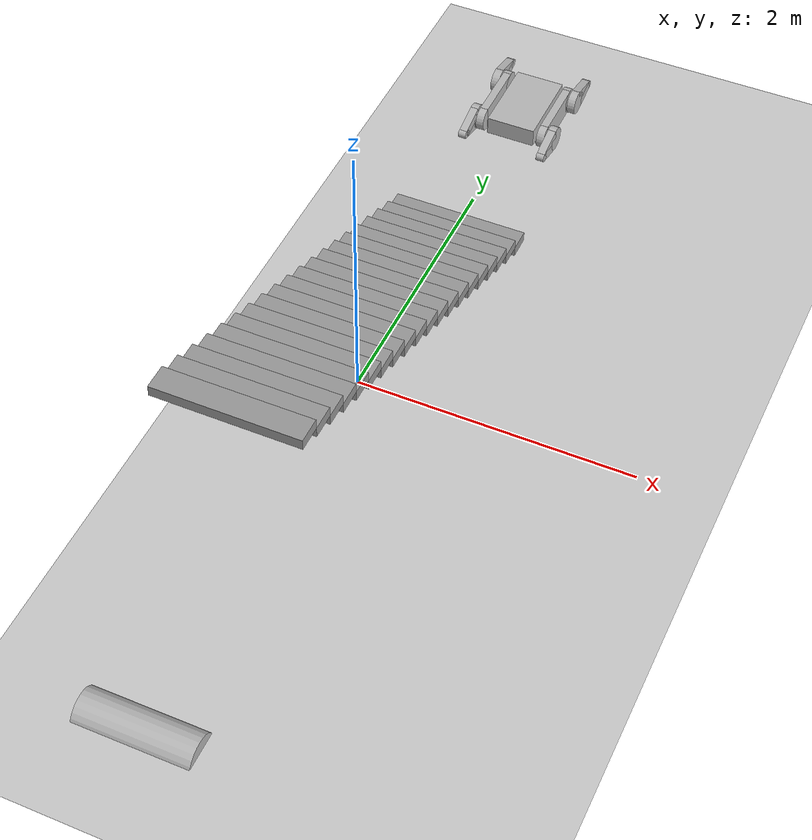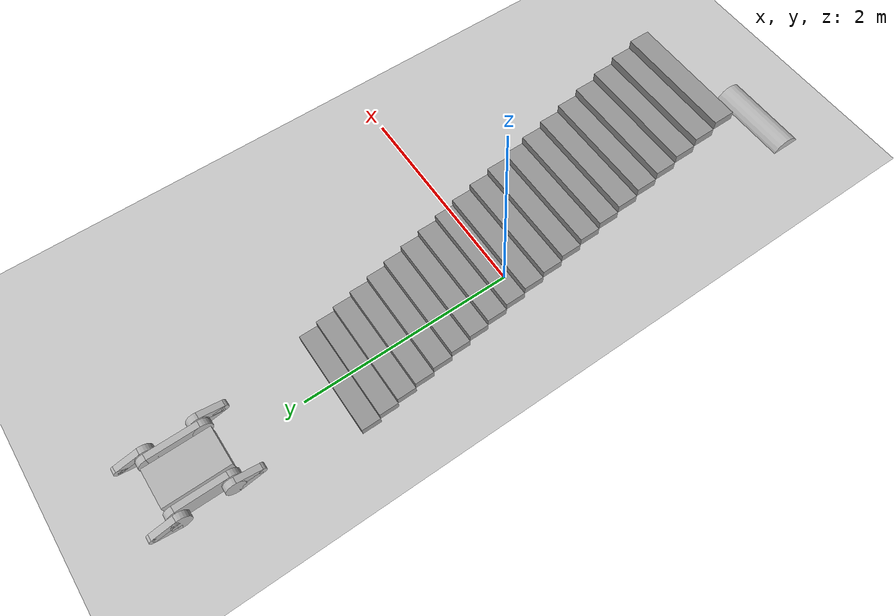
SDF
<?xml version="1.0" ?>
<sdf version="1.6">
    <world name="default">
        <gui>
            <plugin name="keyboard" filename="libKeyboardGUIPlugin.so"/>
        </gui>

        <include>
            <uri>model://sun</uri>
        </include>

        <include>
            <uri>model://ground_plane</uri>
        </include>

        <include>
            <uri>model://jaguar</uri>
        </include>

        <model name='stairs_very_simple'>
            <pose frame=''>0 0 0 0 0 0</pose>
            <link name='Stairs_3'>
                <visual name='Stairs_3_Visual_0'>
                    <pose frame=''>0 1.6625 0.0375 0 -0 0</pose>
                    <geometry>
                        <box>
                            <size>1 0.175 0.075</size>
                        </box>
                    </geometry>
                    <material>
                        <script>
                            <uri>file://media/materials/scripts/gazebo.material</uri>
                            <name>Gazebo/Grey</name>
                        </script>
                        <ambient>1 1 1 1</ambient>
                    </material>
                    <meta>
                        <layer>0</layer>
                    </meta>
                </visual>
                <collision name='Stairs_3_Collision_0'>
                    <geometry>
                        <box>
                            <size>1 0.175 0.075</size>
                        </box>
                    </geometry>
                    <pose frame=''>0 1.6625 0.0375 0 -0 0</pose>
                </collision>
                <visual name='Stairs_3_Visual_1'>
                    <pose frame=''>0 1.4875 0.1125 0 -0 0</pose>
                    <geometry>
                        <box>
                            <size>1 0.175 0.075</size>
                        </box>
                    </geometry>
                    <material>
                        <script>
                            <uri>file://media/materials/scripts/gazebo.material</uri>
                            <name>Gazebo/Grey</name>
                        </script>
                        <ambient>1 1 1 1</ambient>
                    </material>
                    <meta>
                        <layer>0</layer>
                    </meta>
                </visual>
                <collision name='Stairs_3_Collision_1'>
                    <geometry>
                        <box>
                            <size>1 0.175 0.075</size>
                        </box>
                    </geometry>
                    <pose frame=''>0 1.4875 0.1125 0 -0 0</pose>
                </collision>
                <visual name='Stairs_3_Visual_2'>
                    <pose frame=''>0 1.3125 0.1875 0 -0 0</pose>
                    <geometry>
                        <box>
                            <size>1 0.175 0.075</size>
                        </box>
                    </geometry>
                    <material>
                        <script>
                            <uri>file://media/materials/scripts/gazebo.material</uri>
                            <name>Gazebo/Grey</name>
                        </script>
                        <ambient>1 1 1 1</ambient>
                    </material>
                    <meta>
                        <layer>0</layer>
                    </meta>
                </visual>
                <collision name='Stairs_3_Collision_2'>
                    <geometry>
                        <box>
                            <size>1 0.175 0.075</size>
                        </box>
                    </geometry>
                    <pose frame=''>0 1.3125 0.1875 0 -0 0</pose>
                </collision>
                <visual name='Stairs_3_Visual_3'>
                    <pose frame=''>0 1.1375 0.2625 0 -0 0</pose>
                    <geometry>
                        <box>
                            <size>1 0.175 0.075</size>
                        </box>
                    </geometry>
                    <material>
                        <script>
                            <uri>file://media/materials/scripts/gazebo.material</uri>
                            <name>Gazebo/Grey</name>
                        </script>
                        <ambient>1 1 1 1</ambient>
                    </material>
                    <meta>
                        <layer>0</layer>
                    </meta>
                </visual>
                <collision name='Stairs_3_Collision_3'>
                    <geometry>
                        <box>
                            <size>1 0.175 0.075</size>
                        </box>
                    </geometry>
                    <pose frame=''>0 1.1375 0.2625 0 -0 0</pose>
                </collision>
                <visual name='Stairs_3_Visual_4'>
                    <pose frame=''>0 0.9625 0.3375 0 -0 0</pose>
                    <geometry>
                        <box>
                            <size>1 0.175 0.075</size>
                        </box>
                    </geometry>
                    <material>
                        <script>
                            <uri>file://media/materials/scripts/gazebo.material</uri>
                            <name>Gazebo/Grey</name>
                        </script>
                        <ambient>1 1 1 1</ambient>
                    </material>
                    <meta>
                        <layer>0</layer>
                    </meta>
                </visual>
                <collision name='Stairs_3_Collision_4'>
                    <geometry>
                        <box>
                            <size>1 0.175 0.075</size>
                        </box>
                    </geometry>
                    <pose frame=''>0 0.9625 0.3375 0 -0 0</pose>
                </collision>
                <visual name='Stairs_3_Visual_5'>
                    <pose frame=''>0 0.7875 0.4125 0 -0 0</pose>
                    <geometry>
                        <box>
                            <size>1 0.175 0.075</size>
                        </box>
                    </geometry>
                    <material>
                        <script>
                            <uri>file://media/materials/scripts/gazebo.material</uri>
                            <name>Gazebo/Grey</name>
                        </script>
                        <ambient>1 1 1 1</ambient>
                    </material>
                    <meta>
                        <layer>0</layer>
                    </meta>
                </visual>
                <collision name='Stairs_3_Collision_5'>
                    <geometry>
                        <box>
                            <size>1 0.175 0.075</size>
                        </box>
                    </geometry>
                    <pose frame=''>0 0.7875 0.4125 0 -0 0</pose>
                </collision>
                <visual name='Stairs_3_Visual_6'>
                    <pose frame=''>0 0.6125 0.4875 0 -0 0</pose>
                    <geometry>
                        <box>
                            <size>1 0.175 0.075</size>
                        </box>
                    </geometry>
                    <material>
                        <script>
                            <uri>file://media/materials/scripts/gazebo.material</uri>
                            <name>Gazebo/Grey</name>
                        </script>
                        <ambient>1 1 1 1</ambient>
                    </material>
                    <meta>
                        <layer>0</layer>
                    </meta>
                </visual>
                <collision name='Stairs_3_Collision_6'>
                    <geometry>
                        <box>
                            <size>1 0.175 0.075</size>
                        </box>
                    </geometry>
                    <pose frame=''>0 0.6125 0.4875 0 -0 0</pose>
                </collision>
                <visual name='Stairs_3_Visual_7'>
                    <pose frame=''>0 0.4375 0.5625 0 -0 0</pose>
                    <geometry>
                        <box>
                            <size>1 0.175 0.075</size>
                        </box>
                    </geometry>
                    <material>
                        <script>
                            <uri>file://media/materials/scripts/gazebo.material</uri>
                            <name>Gazebo/Grey</name>
                        </script>
                        <ambient>1 1 1 1</ambient>
                    </material>
                    <meta>
                        <layer>0</layer>
                    </meta>
                </visual>
                <collision name='Stairs_3_Collision_7'>
                    <geometry>
                        <box>
                            <size>1 0.175 0.075</size>
                        </box>
                    </geometry>
                    <pose frame=''>0 0.4375 0.5625 0 -0 0</pose>
                </collision>
                <visual name='Stairs_3_Visual_8'>
                    <pose frame=''>0 0.2625 0.6375 0 -0 0</pose>
                    <geometry>
                        <box>
                            <size>1 0.175 0.075</size>
                        </box>
                    </geometry>
                    <material>
                        <script>
                            <uri>file://media/materials/scripts/gazebo.material</uri>
                            <name>Gazebo/Grey</name>
                        </script>
                        <ambient>1 1 1 1</ambient>
                    </material>
                    <meta>
                        <layer>0</layer>
                    </meta>
                </visual>
                <collision name='Stairs_3_Collision_8'>
                    <geometry>
                        <box>
                            <size>1 0.175 0.075</size>
                        </box>
                    </geometry>
                    <pose frame=''>0 0.2625 0.6375 0 -0 0</pose>
                </collision>
                <visual name='Stairs_3_Visual_9'>
                    <pose frame=''>0 0.0875 0.7125 0 -0 0</pose>
                    <geometry>
                        <box>
                            <size>1 0.175 0.075</size>
                        </box>
                    </geometry>
                    <material>
                        <script>
                            <uri>file://media/materials/scripts/gazebo.material</uri>
                            <name>Gazebo/Grey</name>
                        </script>
                        <ambient>1 1 1 1</ambient>
                    </material>
                    <meta>
                        <layer>0</layer>
                    </meta>
                </visual>
                <collision name='Stairs_3_Collision_9'>
                    <geometry>
                        <box>
                            <size>1 0.175 0.075</size>
                        </box>
                    </geometry>
                    <pose frame=''>0 0.0875 0.7125 0 -0 0</pose>
                </collision>
                <visual name='Stairs_3_Visual_10'>
                    <pose frame=''>0 -0.0875 0.7875 0 -0 0</pose>
                    <geometry>
                        <box>
                            <size>1 0.175 0.075</size>
                        </box>
                    </geometry>
                    <material>
                        <script>
                            <uri>file://media/materials/scripts/gazebo.material</uri>
                            <name>Gazebo/Grey</name>
                        </script>
                        <ambient>1 1 1 1</ambient>
                    </material>
                    <meta>
                        <layer>0</layer>
                    </meta>
                </visual>
                <collision name='Stairs_3_Collision_10'>
                    <geometry>
                        <box>
                            <size>1 0.175 0.075</size>
                        </box>
                    </geometry>
                    <pose frame=''>0 -0.0875 0.7875 0 -0 0</pose>
                </collision>
                <visual name='Stairs_3_Visual_11'>
                    <pose frame=''>0 -0.2625 0.8625 0 -0 0</pose>
                    <geometry>
                        <box>
                            <size>1 0.175 0.075</size>
                        </box>
                    </geometry>
                    <material>
                        <script>
                            <uri>file://media/materials/scripts/gazebo.material</uri>
                            <name>Gazebo/Grey</name>
                        </script>
                        <ambient>1 1 1 1</ambient>
                    </material>
                    <meta>
                        <layer>0</layer>
                    </meta>
                </visual>
                <collision name='Stairs_3_Collision_11'>
                    <geometry>
                        <box>
                            <size>1 0.175 0.075</size>
                        </box>
                    </geometry>
                    <pose frame=''>0 -0.2625 0.8625 0 -0 0</pose>
                </collision>
                <visual name='Stairs_3_Visual_12'>
                    <pose frame=''>0 -0.4375 0.9375 0 -0 0</pose>
                    <geometry>
                        <box>
                            <size>1 0.175 0.075</size>
                        </box>
                    </geometry>
                    <material>
                        <script>
                            <uri>file://media/materials/scripts/gazebo.material</uri>
                            <name>Gazebo/Grey</name>
                        </script>
                        <ambient>1 1 1 1</ambient>
                    </material>
                    <meta>
                        <layer>0</layer>
                    </meta>
                </visual>
                <collision name='Stairs_3_Collision_12'>
                    <geometry>
                        <box>
                            <size>1 0.175 0.075</size>
                        </box>
                    </geometry>
                    <pose frame=''>0 -0.4375 0.9375 0 -0 0</pose>
                </collision>
                <visual name='Stairs_3_Visual_13'>
                    <pose frame=''>0 -0.6125 1.0125 0 -0 0</pose>
                    <geometry>
                        <box>
                            <size>1 0.175 0.075</size>
                        </box>
                    </geometry>
                    <material>
                        <script>
                            <uri>file://media/materials/scripts/gazebo.material</uri>
                            <name>Gazebo/Grey</name>
                        </script>
                        <ambient>1 1 1 1</ambient>
                    </material>
                    <meta>
                        <layer>0</layer>
                    </meta>
                </visual>
                <collision name='Stairs_3_Collision_13'>
                    <geometry>
                        <box>
                            <size>1 0.175 0.075</size>
                        </box>
                    </geometry>
                    <pose frame=''>0 -0.6125 1.0125 0 -0 0</pose>
                </collision>
                <visual name='Stairs_3_Visual_14'>
                    <pose frame=''>0 -0.7875 1.0875 0 -0 0</pose>
                    <geometry>
                        <box>
                            <size>1 0.175 0.075</size>
                        </box>
                    </geometry>
                    <material>
                        <script>
                            <uri>file://media/materials/scripts/gazebo.material</uri>
                            <name>Gazebo/Grey</name>
                        </script>
                        <ambient>1 1 1 1</ambient>
                    </material>
                    <meta>
                        <layer>0</layer>
                    </meta>
                </visual>
                <collision name='Stairs_3_Collision_14'>
                    <geometry>
                        <box>
                            <size>1 0.175 0.075</size>
                        </box>
                    </geometry>
                    <pose frame=''>0 -0.7875 1.0875 0 -0 0</pose>
                </collision>
                <visual name='Stairs_3_Visual_15'>
                    <pose frame=''>0 -0.9625 1.1625 0 -0 0</pose>
                    <geometry>
                        <box>
                            <size>1 0.175 0.075</size>
                        </box>
                    </geometry>
                    <material>
                        <script>
                            <uri>file://media/materials/scripts/gazebo.material</uri>
                            <name>Gazebo/Grey</name>
                        </script>
                        <ambient>1 1 1 1</ambient>
                    </material>
                    <meta>
                        <layer>0</layer>
                    </meta>
                </visual>
                <collision name='Stairs_3_Collision_15'>
                    <geometry>
                        <box>
                            <size>1 0.175 0.075</size>
                        </box>
                    </geometry>
                    <pose frame=''>0 -0.9625 1.1625 0 -0 0</pose>
                </collision>
                <visual name='Stairs_3_Visual_16'>
                    <pose frame=''>0 -1.1375 1.2375 0 -0 0</pose>
                    <geometry>
                        <box>
                            <size>1 0.175 0.075</size>
                        </box>
                    </geometry>
                    <material>
                        <script>
                            <uri>file://media/materials/scripts/gazebo.material</uri>
                            <name>Gazebo/Grey</name>
                        </script>
                        <ambient>1 1 1 1</ambient>
                    </material>
                    <meta>
                        <layer>0</layer>
                    </meta>
                </visual>
                <collision name='Stairs_3_Collision_16'>
                    <geometry>
                        <box>
                            <size>1 0.175 0.075</size>
                        </box>
                    </geometry>
                    <pose frame=''>0 -1.1375 1.2375 0 -0 0</pose>
                </collision>
                <visual name='Stairs_3_Visual_17'>
                    <pose frame=''>0 -1.3125 1.3125 0 -0 0</pose>
                    <geometry>
                        <box>
                            <size>1 0.175 0.075</size>
                        </box>
                    </geometry>
                    <material>
                        <script>
                            <uri>file://media/materials/scripts/gazebo.material</uri>
                            <name>Gazebo/Grey</name>
                        </script>
                        <ambient>1 1 1 1</ambient>
                    </material>
                    <meta>
                        <layer>0</layer>
                    </meta>
                </visual>
                <collision name='Stairs_3_Collision_17'>
                    <geometry>
                        <box>
                            <size>1 0.175 0.075</size>
                        </box>
                    </geometry>
                    <pose frame=''>0 -1.3125 1.3125 0 -0 0</pose>
                </collision>
                <visual name='Stairs_3_Visual_18'>
                    <pose frame=''>0 -1.4875 1.3875 0 -0 0</pose>
                    <geometry>
                        <box>
                            <size>1 0.175 0.075</size>
                        </box>
                    </geometry>
                    <material>
                        <script>
                            <uri>file://media/materials/scripts/gazebo.material</uri>
                            <name>Gazebo/Grey</name>
                        </script>
                        <ambient>1 1 1 1</ambient>
                    </material>
                    <meta>
                        <layer>0</layer>
                    </meta>
                </visual>
                <collision name='Stairs_3_Collision_18'>
                    <geometry>
                        <box>
                            <size>1 0.175 0.075</size>
                        </box>
                    </geometry>
                    <pose frame=''>0 -1.4875 1.3875 0 -0 0</pose>
                </collision>
                <visual name='Stairs_3_Visual_19'>
                    <pose frame=''>0 -1.6625 1.4625 0 -0 0</pose>
                    <geometry>
                        <box>
                            <size>1 0.175 0.075</size>
                        </box>
                    </geometry>
                    <material>
                        <script>
                            <uri>file://media/materials/scripts/gazebo.material</uri>
                            <name>Gazebo/Grey</name>
                        </script>
                        <ambient>1 1 1 1</ambient>
                    </material>
                    <meta>
                        <layer>0</layer>
                    </meta>
                </visual>
                <collision name='Stairs_3_Collision_19'>
                    <geometry>
                        <box>
                            <size>1 0.175 0.075</size>
                        </box>
                    </geometry>
                    <pose frame=''>0 -1.6625 1.4625 0 -0 0</pose>
                </collision>
            </link>
            <static>1</static>
        </model>

        <model name="cylinder_obstacle">
            <static>true</static>
            <pose>0 -3 -0.06 0 0 0</pose>
            <link name="cylinder">
                <collision name="cylinder_collision">
                    <pose frame="">0 0 0 0 1.570796327 0</pose>
                    <geometry>
                        <cylinder>
                            <radius>0.15</radius>
                            <length>0.8</length>
                        </cylinder>
                    </geometry>
                    <surface>
                        <friction>
                            <ode>
                                <mu>1</mu>
                            </ode>
                        </friction>
                    </surface>
                </collision>
                <visual name="cylinder_visual">
                    <pose frame="">0 0 0 0 1.570796327 0</pose>
                    <geometry>
                        <cylinder>
                            <radius>0.15</radius>
                            <length>0.8</length>
                        </cylinder>
                    </geometry>
                </visual>
            </link>
        </model>
    </world>
</sdf>

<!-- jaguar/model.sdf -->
<sdf version="1.5">
        <model name="jaguar">

            <pose frame=''>0 3 0.1 0 0 -1.5708</pose>

            <link name='base_link'>
                <pose frame=''>0 0 0 0 -0 0</pose>
                <inertial>
                    <pose frame=''>0 0 0 1.5708 -0 0</pose>
                    <mass>13.14</mass>
                    <inertia>
                        <ixx>0.17136</ixx>
                        <ixy>0</ixy>
                        <ixz>0</ixz>
                        <iyy>0.544105</iyy>
                        <iyz>0</iyz>
                        <izz>0.415662</izz>
                    </inertia>
                </inertial>
                <collision name='base_link_collision'>
                    <pose frame=''>0 0 0 0 -0 0</pose>
                    <geometry>
                        <box>
                            <size>0.6 0.37 0.140</size>
                        </box>
                    </geometry>
                </collision>
                <visual name='base_link_visual'>
                    <pose frame=''>0 0 0 0 -0 0</pose>
                    <geometry>
                        <box>
                            <size>0.6 0.37 0.140</size>
                        </box>
                    </geometry>
                </visual>
                <self_collide>0</self_collide>
                <gravity>1</gravity>
                <kinematic>0</kinematic>
            </link>

            <link name='left_track'>
                <pose frame=''>0 0.245 0 0 0 0</pose>
                <inertial>
                    <pose frame=''>0 0 0 0 0 0</pose>
                    <mass>6.06</mass>
                    <inertia>
                        <ixx>0.001818</ixx>
                        <ixy>0</ixy>
                        <ixz>0</ixz>
                        <iyy>0.032554</iyy>
                        <iyz>0</iyz>
                        <izz>0.031391</izz>
                    </inertia>
                </inertial>
                <collision name='left_track_collision'>
                    <pose frame=''>0 0 0 1.5708 0 1.5708</pose>
                    <geometry>
                        <box>
                            <size>0.06 0.180 0.46</size>
                        </box>
                    </geometry>
                    <surface>
                        <friction>
                            <ode>
                                <mu>0.7</mu>
                                <mu2>150</mu2>
                                <fdir1>0 1 0</fdir1>
                            </ode>
                        </friction>
                    </surface>
                </collision>
                <collision name='left_track_collision_1'>
                    <pose frame=''>0.23 0 0 1.5708 0 0</pose>
                    <geometry>
                        <cylinder>
                            <length>0.06</length>
                            <radius>0.09</radius>
                        </cylinder>
                    </geometry>
                    <surface>
                        <friction>
                            <ode>
                                <mu>0.7</mu>
                                <mu2>150</mu2>
                                <fdir1>0 1 0</fdir1>
                            </ode>
                        </friction>
                    </surface>
                </collision>
                <collision name='left_track_collision_2'>
                    <pose frame=''>-0.23 0 0 1.5708 0 0</pose>
                    <geometry>
                        <cylinder>
                            <length>0.06</length>
                            <radius>0.09</radius>
                        </cylinder>
                    </geometry>
                    <surface>
                        <friction>
                            <ode>
                                <mu>0.7</mu>
                                <mu2>150</mu2>
                                <fdir1>0 1 0</fdir1>
                            </ode>
                        </friction>
                    </surface>
                </collision>
                <visual name='left_track_visual'>
                    <pose frame=''>0 0 0 1.5708 0 1.5708</pose>
                    <geometry>
                        <box>
                            <size>0.06 0.180 0.46</size>
                        </box>
                    </geometry>
                </visual>
                <visual name='left_track_visual_1'>
                    <pose frame=''>0.23 0 0 1.5708 0 0</pose>
                    <geometry>
                        <cylinder>
                            <length>0.06</length>
                            <radius>0.09</radius>
                        </cylinder>
                    </geometry>
                </visual>
                <visual name='left_track_visual_2'>
                    <pose frame=''>-0.23 0 0 1.5708 0 0</pose>
                    <geometry>
                        <cylinder>
                            <length>0.06</length>
                            <radius>0.09</radius>
                        </cylinder>
                    </geometry>
                </visual>
                <gravity>1</gravity>
                <kinematic>0</kinematic>
            </link>
            <joint name='left_track_j' type='fixed'>
                <child>left_track</child>
                <parent>base_link</parent>
            </joint>

            <link name='right_track'>
                <pose frame=''>0 -0.245 0 0 0 0</pose>
                <inertial>
                    <pose frame=''>0 0 0 0 -0 0</pose>
                    <mass>6.06</mass>
                    <inertia>
                        <ixx>0.001818</ixx>
                        <ixy>0</ixy>
                        <ixz>0</ixz>
                        <iyy>0.032554</iyy>
                        <iyz>0</iyz>
                        <izz>0.031391</izz>
                    </inertia>
                </inertial>
                <collision name='right_track_collision'>
                    <pose frame=''>0 0 0 1.5708 0 1.5708</pose>
                    <geometry>
                        <box>
                            <size>0.06 0.180 0.46</size>
                        </box>
                    </geometry>
                    <surface>
                        <friction>
                            <ode>
                                <mu>0.7</mu>
                                <mu2>150</mu2>
                                <fdir1>0 1 0</fdir1>
                            </ode>
                        </friction>
                    </surface>
                </collision>
                <collision name='right_track_collision_1'>
                    <pose frame=''>0.23 0 0 1.5708 0 0</pose>
                    <geometry>
                        <cylinder>
                            <length>0.06</length>
                            <radius>0.09</radius>
                        </cylinder>
                    </geometry>
                    <surface>
                        <friction>
                            <ode>
                                <mu>0.7</mu>
                                <mu2>150</mu2>
                                <fdir1>0 1 0</fdir1>
                            </ode>
                        </friction>
                    </surface>
                </collision>
                <collision name='right_track_collision_2'>
                    <pose frame=''>-0.23 0 0 1.5708 0 0</pose>
                    <geometry>
                        <cylinder>
                            <length>0.06</length>
                            <radius>0.09</radius>
                        </cylinder>
                    </geometry>
                    <surface>
                        <friction>
                            <ode>
                                <mu>0.7</mu>
                                <mu2>150</mu2>
                                <fdir1>0 1 0</fdir1>
                            </ode>
                        </friction>
                    </surface>
                </collision>
                <visual name='right_track_visual'>
                    <pose frame=''>0 0 0 1.5708 0 1.5708</pose>
                    <geometry>
                        <box>
                            <size>0.06 0.180 0.46</size>
                        </box>
                    </geometry>
                </visual>
                <visual name='right_track_visual_1'>
                    <pose frame=''>0.23 0 0 1.5708 0 0</pose>
                    <geometry>
                        <cylinder>
                            <length>0.06</length>
                            <radius>0.09</radius>
                        </cylinder>
                    </geometry>
                </visual>
                <visual name='right_track_visual_2'>
                    <pose frame=''>-0.23 0 0 1.5708 0 0</pose>
                    <geometry>
                        <cylinder>
                            <length>0.06</length>
                            <radius>0.09</radius>
                        </cylinder>
                    </geometry>
                </visual>
                <gravity>1</gravity>
                <kinematic>0</kinematic>
            </link>
            <joint name='right_track_j' type='fixed'>
                <child>right_track</child>
                <parent>base_link</parent>
            </joint>
            <!--__________________right_rear_arm__________________-->

		    <link name="right_rear_arm">
		      <pose>-0.345 -0.315 0.00 0 0 1.5708</pose>
		      <inertial>
		        <pose>-0.015 0 0 1.57 0 1.57</pose>
		        <mass>1.0</mass>
		        <inertia>
		          <ixx>6.8125e-4</ixx>
		          <ixy>0</ixy>
		          <ixz>0</ixz>
		          <iyy>3.96253e-3</iyy>
		          <iyz>0</iyz>
		          <izz>4.53125e-3</izz>
		        </inertia>
		      </inertial>
		      <visual name="visual">
		        <geometry>
		          <box>
		            <size>.002 .23 .05</size>
		          </box>
		        </geometry>
		        <material>
		          <ambient>0.7 0.7 0.7 1</ambient>
		          <diffuse>0.3 0.3 0.3 1</diffuse>
		          <specular>0.1 0.1 0.1 1</specular>
		          <emissive>0 0 0 0</emissive>
		        </material>
		      </visual>

    		      <collision name="collision_right_rear_arm_wheel_1">
                    <pose>-0 -0.115 0 0 -1.5708 0</pose>
    		        <geometry>
    		          <cylinder>
    		            <radius>.09</radius>
    		            <length>.06</length>
    		          </cylinder>
    		        </geometry>
    		        <surface>
    		          <friction>
    		            <ode>
    		              <mu>0.7</mu>
                          <mu2>150</mu2>
                          <fdir1>0 1 0</fdir1>
    		            </ode>
    		          </friction>
    		        </surface>
    		      </collision>

    		      <visual name="visual_right_rear_arm_wheel_1">
                    <pose>-0 -0.115 0 0 -1.5708 0</pose>
    		        <geometry>
    		          <cylinder>
    		            <radius>.09</radius>
    		            <length>.06</length>
    		          </cylinder>
    		        </geometry>
    		      </visual>
    		      <self_collide>0</self_collide>

    		     <collision name="collision_right_rear_arm_wheel_2">
                    <pose>-0 0.115 0 0 -1.5708 0</pose>
    		        <geometry>
    		          <cylinder>
    		            <radius>.035</radius>
    		            <length>.06</length>
    		          </cylinder>
    		        </geometry>
    		        <surface>
    		          <friction>
    		            <ode>
    		              <mu>0.7</mu>
                          <mu2>150</mu2>
                          <fdir1>0 1 0</fdir1>
    		            </ode>
    		          </friction>
    		        </surface>
    		      </collision>

    		      <visual name="visual_right_rear_arm_wheel_2">
                    <pose>-0 0.115 0 0 -1.5708 0</pose>
    		        <geometry>
    		          <cylinder>
    		            <radius>.035</radius>
    		            <length>.06</length>
    		          </cylinder>
    		        </geometry>
    		      </visual>
    		      <self_collide>0</self_collide>

                     <collision name='right_rear_track_collision'>
                        <pose>-0 0.00657 -0.0267021 -1.3293 0 0</pose>
                        <geometry>
                            <box>
                                <size>0.06 0.07 0.2233</size>
                            </box>
                        </geometry>
                        <surface>
                            <friction>
                                <ode>
                                    <mu>0.7</mu>
                                    <mu2>150</mu2>
                                    <fdir1>0 1 0</fdir1>
                                </ode>
                            </friction>
                        </surface>
                    </collision>

                    <visual name='right_rear_track_visual'>
                        <pose>-0 0.00657 0.0267021 1.3293 0 0</pose>
                        <geometry>
                            <box>
                                <size>0.06 0.07 0.2233</size>
                            </box>
                        </geometry>
                    </visual>

                    <collision name='right_rear_track_collision_2'>
                        <pose>-0 0.00657 0.0267021 1.3293 0 0</pose>
                        <geometry>
                            <box>
                                <size>0.06 0.07 0.23</size>
                            </box>
                        </geometry>
                        <surface>
                            <friction>
                                <ode>
                                    <mu>0.7</mu>
                                    <mu2>150</mu2>
                                    <fdir1>0 1 0</fdir1>
                                </ode>
                            </friction>
                        </surface>
                    </collision>

                    <visual name='right_rear_track_visual_2'>
                        <pose>-0 0.00657 -0.0267021 -1.3293 0 0</pose>
                        <geometry>
                            <box>
                                <size>0.06 0.07 0.23</size>
                            </box>
                        </geometry>
                    </visual>
                    <gravity>1</gravity>
                    <kinematic>0</kinematic>-->
            </link>
            <joint name='right_rear_track_j' type='fixed'>
                <pose>0 -0.115 -0.001 0 0 0</pose>
                <child>right_rear_arm</child>
                <parent>base_link</parent>
                <axis>
                    <xyz>1 0 0</xyz>
                    <dynamics>
                        <damping>.5</damping>
                    </dynamics>
                    <limit>
                        <velocity>1</velocity>
                    </limit>
                </axis>
            </joint>

		<!--__________________/right_rear_arm__________________-->

		<!--__________________left_rear_arm__________________-->
		   <link name="left_rear_arm">
              <pose>-0.345 0.315 0.00 0 0 1.5708</pose>
              <inertial>
                <pose>-0.015 0 0 1.57 0 1.57</pose>
                <mass>1.0</mass>
                <inertia>
                  <ixx>6.8125e-4</ixx>
                  <ixy>0</ixy>
                  <ixz>0</ixz>
                  <iyy>3.96253e-3</iyy>
                  <iyz>0</iyz>
                  <izz>4.53125e-3</izz>
                </inertia>
              </inertial>
              <visual name="visual">
                <geometry>
                  <box>
                    <size>.002 .23 .05</size>
                  </box>
                </geometry>
                <material>
                  <ambient>0.7 0.7 0.7 1</ambient>
                  <diffuse>0.3 0.3 0.3 1</diffuse>
                  <specular>0.1 0.1 0.1 1</specular>
                  <emissive>0 0 0 0</emissive>
                </material>
              </visual>

                  <collision name="collision_left_rear_arm_wheel_1">
                    <pose>-0 -0.115 0 0 -1.5708 0</pose>
                    <geometry>
                      <cylinder>
                        <radius>.09</radius>
                        <length>.06</length>
                      </cylinder>
                    </geometry>
                    <surface>
                      <friction>
                        <ode>
                          <mu>0.7</mu>
                          <mu2>150</mu2>
                          <fdir1>0 1 0</fdir1>
                        </ode>
                      </friction>
                    </surface>
                  </collision>

                  <visual name="visual_left_rear_arm_wheel_1">
                    <pose>-0 -0.115 0 0 -1.5708 0</pose>
                    <geometry>
                      <cylinder>
                        <radius>.09</radius>
                        <length>.06</length>
                      </cylinder>
                    </geometry>
                  </visual>
                  <self_collide>0</self_collide>

                 <collision name="collision_left_rear_arm_wheel_2">
                    <pose>-0 0.115 0 0 -1.5708 0</pose>
                    <geometry>
                      <cylinder>
                        <radius>.035</radius>
                        <length>.06</length>
                      </cylinder>
                    </geometry>
                    <surface>
                      <friction>
                        <ode>
                          <mu>0.7</mu>
                          <mu2>150</mu2>
                          <fdir1>0 1 0</fdir1>
                        </ode>
                      </friction>
                    </surface>
                  </collision>

                  <visual name="visual_left_rear_arm_wheel_2">
                    <pose>-0 0.115 0 0 -1.5708 0</pose>
                    <geometry>
                      <cylinder>
                        <radius>.035</radius>
                        <length>.06</length>
                      </cylinder>
                    </geometry>
                  </visual>
                  <self_collide>0</self_collide>

                     <collision name='left_rear_track_collision'>
                        <pose>-0 0.00657 0.0267021 1.3293 0 0</pose>
                        <geometry>
                            <box>
                                <size>0.06 0.07 0.2233</size>
                            </box>
                        </geometry>
                        <surface>
                            <friction>
                                <ode>
                                    <mu>0.7</mu>
                                    <mu2>150</mu2>
                                    <fdir1>0 1 0</fdir1>
                                </ode>
                            </friction>
                        </surface>
                    </collision>

                    <visual name='left_rear_track_visual'>
                        <pose>-0 0.00657 0.0267021 1.3293 0 0</pose>
                        <geometry>
                            <box>
                                <size>0.06 0.07 0.2233</size>
                            </box>
                        </geometry>
                    </visual>

                    <collision name='left_rear_track_collision_2'>
                        <pose>-0 0.00657 -0.0267021 -1.3293 0 0</pose>
                        <geometry>
                            <box>
                                <size>0.06 0.07 0.23</size>
                            </box>
                        </geometry>
                        <surface>
                            <friction>
                                <ode>
                                    <mu>0.7</mu>
                                    <mu2>150</mu2>
                                    <fdir1>0 1 0</fdir1>
                                </ode>
                            </friction>
                        </surface>
                    </collision>

                    <visual name='left_rear_track_visual_2'>
                        <pose>-0 0.00657 -0.0267021 -1.3293 0 0</pose>
                        <geometry>
                            <box>
                                <size>0.06 0.07 0.23</size>
                            </box>
                        </geometry>
                    </visual>
                    <gravity>1</gravity>
                    <kinematic>0</kinematic>-->
            </link>
            <joint name='left_rear_track_j' type='fixed'>
                <pose>0 -0.115 0.001 0 0 0</pose>
                <child>left_rear_arm</child>
                <parent>base_link</parent>
                <axis>
                    <xyz>1 0 0</xyz>
                    <dynamics>
                        <damping>.5</damping>
                    </dynamics>
                    <limit>
                        <velocity>1</velocity>
                    </limit>
                </axis>
            </joint>

		<!--__________________/left_rear_arm__________________-->

		<!--__________________right_front_arm__________________-->
	    	<link name="right_front_arm">
              <pose>0.345 -0.315 0.00 0 0 1.5708</pose>
              <inertial>
                <pose>-0.015 0 0 1.57 0 1.57</pose>
                <mass>1.0</mass>
                <inertia>
                  <ixx>6.8125e-4</ixx>
                  <ixy>0</ixy>
                  <ixz>0</ixz>
                  <iyy>3.96253e-3</iyy>
                  <iyz>0</iyz>
                  <izz>4.53125e-3</izz>
                </inertia>
              </inertial>
              <visual name="visual">
                <geometry>
                  <box>
                    <size>.002 .23 .05</size>
                  </box>
                </geometry>
                <material>
                  <ambient>0.7 0.7 0.7 1</ambient>
                  <diffuse>0.3 0.3 0.3 1</diffuse>
                  <specular>0.1 0.1 0.1 1</specular>
                  <emissive>0 0 0 0</emissive>
                </material>
              </visual>

                  <collision name="collision_right_front_arm_wheel_1">
                    <pose>-0 0.115 0 0 -1.5708 0</pose>
                    <geometry>
                      <cylinder>
                        <radius>.09</radius>
                        <length>.06</length>
                      </cylinder>
                    </geometry>
                    <surface>
                      <friction>
                        <ode>
                          <mu>0.7</mu>
                          <mu2>150</mu2>
                          <fdir1>0 1 0</fdir1>
                        </ode>
                      </friction>
                    </surface>
                  </collision>

                  <visual name="visual_right_front_arm_wheel_1">
                    <pose>-0 0.115 0 0 -1.5708 0</pose>
                    <geometry>
                      <cylinder>
                        <radius>.09</radius>
                        <length>.06</length>
                      </cylinder>
                    </geometry>
                  </visual>
                  <self_collide>0</self_collide>

                 <collision name="collision_right_front_arm_wheel_2">
                    <pose>-0 -0.115 0 0 -1.5708 0</pose>
                    <geometry>
                      <cylinder>
                        <radius>.035</radius>
                        <length>.06</length>
                      </cylinder>
                    </geometry>
                    <surface>
                      <friction>
                        <ode>
                          <mu>0.7</mu>
                          <mu2>150</mu2>
                          <fdir1>0 1 0</fdir1>
                        </ode>
                      </friction>
                    </surface>
                  </collision>

                  <visual name="visual_right_front_arm_wheel_2">
                    <pose>-0 -0.115 0 0 -1.5708 0</pose>
                    <geometry>
                      <cylinder>
                        <radius>.035</radius>
                        <length>.06</length>
                      </cylinder>
                    </geometry>
                  </visual>
                  <self_collide>0</self_collide>

                     <collision name='right_front_track_collision'>
                        <pose>-0 -0.00657 0.0267021 -1.3293 0 0</pose>
                        <geometry>
                            <box>
                                <size>0.06 0.07 0.2233</size>
                            </box>
                        </geometry>
                        <surface>
                            <friction>
                                <ode>
                                    <mu>0.7</mu>
                                    <mu2>150</mu2>
                                    <fdir1>0 1 0</fdir1>
                                </ode>
                            </friction>
                        </surface>
                    </collision>

                    <visual name='right_front_track_visual'>
                        <pose>-0 -0.00657 0.0267021 -1.3293 0 0</pose>
                        <geometry>
                            <box>
                                <size>0.06 0.07 0.2233</size>
                            </box>
                        </geometry>
                    </visual>

                    <collision name='right_front_track_collision_2'>
                        <pose>-0 -0.00657 -0.0267021 1.3293 0 0</pose>
                        <geometry>
                            <box>
                                <size>0.06 0.07 0.23</size>
                            </box>
                        </geometry>
                        <surface>
                            <friction>
                                <ode>
                                    <mu>0.7</mu>
                                    <mu2>150</mu2>
                                    <fdir1>0 1 0</fdir1>
                                </ode>
                            </friction>
                        </surface>
                    </collision>

                    <visual name='right_front_track_visual_2'>
                        <pose>-0 -0.00657 -0.0267021 1.3293 0 0</pose>
                        <geometry>
                            <box>
                                <size>0.06 0.07 0.23</size>
                            </box>
                        </geometry>
                    </visual>
                    <gravity>1</gravity>
                    <kinematic>0</kinematic>-->
            </link>
            <joint name='right_front_track_j' type='fixed'>
                <pose>0 0.115 -0.001 0 0 0</pose>
                <child>right_front_arm</child>
                <parent>base_link</parent>
                <axis>
                    <xyz>1 0 0</xyz>
                    <dynamics>
                        <damping>.5</damping>
                    </dynamics>
                    <limit>
                        <velocity>1</velocity>
                    </limit>
                </axis>
            </joint>
		<!--__________________/right_front_arm__________________-->
		<!--__________________left_front_arm__________________-->
		    <link name="left_front_arm">
              <pose>0.345 0.315 0.00 0 0 1.5708</pose>
              <inertial>
                <pose>-0.015 0 0 1.57 0 1.57</pose>
                <mass>1.0</mass>
                <inertia>
                  <ixx>6.8125e-4</ixx>
                  <ixy>0</ixy>
                  <ixz>0</ixz>
                  <iyy>3.96253e-3</iyy>
                  <iyz>0</iyz>
                  <izz>4.53125e-3</izz>
                </inertia>
              </inertial>
              <visual name="visual">
                <geometry>
                  <box>
                    <size>.002 .23 .05</size>
                  </box>
                </geometry>
                <material>
                  <ambient>0.7 0.7 0.7 1</ambient>
                  <diffuse>0.3 0.3 0.3 1</diffuse>
                  <specular>0.1 0.1 0.1 1</specular>
                  <emissive>0 0 0 0</emissive>
                </material>
              </visual>

                  <collision name="collision_left_front_arm_wheel_1">
                    <pose>-0 0.115 0 0 -1.5708 0</pose>
                    <geometry>
                      <cylinder>
                        <radius>.09</radius>
                        <length>.06</length>
                      </cylinder>
                    </geometry>
                    <surface>
                      <friction>
                        <ode>
                          <mu>0.7</mu>
                          <mu2>150</mu2>
                          <fdir1>0 1 0</fdir1>
                        </ode>
                      </friction>
                    </surface>
                  </collision>

                  <visual name="visual_left_front_arm_wheel_1">
                    <pose>-0 0.115 0 0 -1.5708 0</pose>
                    <geometry>
                      <cylinder>
                        <radius>.09</radius>
                        <length>.06</length>
                      </cylinder>
                    </geometry>
                  </visual>
                  <self_collide>0</self_collide>

                 <collision name="collision_left_front_arm_wheel_2">
                    <pose>-0 -0.115 0 0 -1.5708 0</pose>
                    <geometry>
                      <cylinder>
                        <radius>.035</radius>
                        <length>.06</length>
                      </cylinder>
                    </geometry>
                    <surface>
                      <friction>
                        <ode>
                          <mu>0.7</mu>
                          <mu2>150</mu2>
                          <fdir1>0 1 0</fdir1>
                        </ode>
                      </friction>
                    </surface>
                  </collision>

                  <visual name="visual_left_front_arm_wheel_2">
                    <pose>-0 -0.115 0 0 -1.5708 0</pose>
                    <geometry>
                      <cylinder>
                        <radius>.035</radius>
                        <length>.06</length>
                      </cylinder>
                    </geometry>
                  </visual>
                  <self_collide>0</self_collide>

                     <collision name='left_front_track_collision'>
                        <pose>-0 -0.00657 0.0267021 -1.3293 0 0</pose>
                        <geometry>
                            <box>
                                <size>0.06 0.07 0.2233</size>
                            </box>
                        </geometry>
                        <surface>
                            <friction>
                                <ode>
                                    <mu>0.7</mu>
                                    <mu2>150</mu2>
                                    <fdir1>0 1 0</fdir1>
                                </ode>
                            </friction>
                        </surface>
                    </collision>

                    <visual name='left_front_track_visual'>
                        <pose>-0 -0.00657 0.0267021 -1.3293 0 0</pose>
                        <geometry>
                            <box>
                                <size>0.06 0.07 0.2233</size>
                            </box>
                        </geometry>
                    </visual>

                    <collision name='left_front_track_collision_2'>
                        <pose>-0 -0.00657 -0.0267021 1.3293 0 0</pose>
                        <geometry>
                            <box>
                                <size>0.06 0.07 0.23</size>
                            </box>
                        </geometry>
                        <surface>
                            <friction>
                                <ode>
                                    <mu>0.7</mu>
                                    <mu2>150</mu2>
                                    <fdir1>0 1 0</fdir1>
                                </ode>
                            </friction>
                        </surface>
                    </collision>

                    <visual name='left_front_track_visual_2'>
                        <pose>-0 -0.00657 -0.0267021 1.3293 0 0</pose>
                        <geometry>
                            <box>
                                <size>0.06 0.07 0.23</size>
                            </box>
                        </geometry>
                    </visual>
                    <gravity>1</gravity>
                    <kinematic>0</kinematic>-->
            </link>
            <joint name='left_front_track_j' type='fixed'>
                <pose>0 0.115 0.001 0 0 0</pose>
                <child>left_front_arm</child>
                <parent>base_link</parent>
                <axis>
                    <xyz>1 0 0</xyz>
                    <dynamics>
                        <damping>.5</damping>
                    </dynamics>
                    <limit>
                        <velocity>1</velocity>
                    </limit>
                </axis>
            </joint>
  	</model>
</sdf>
